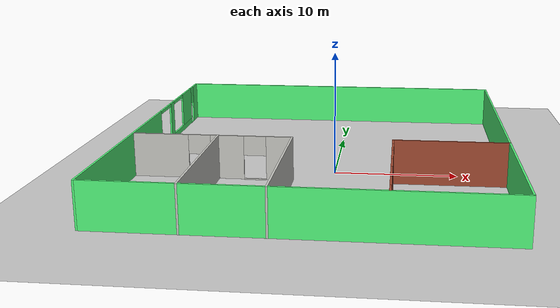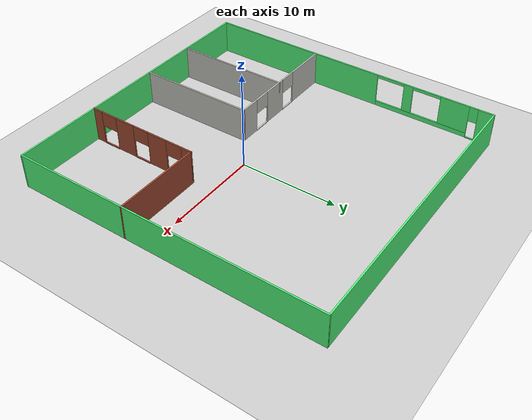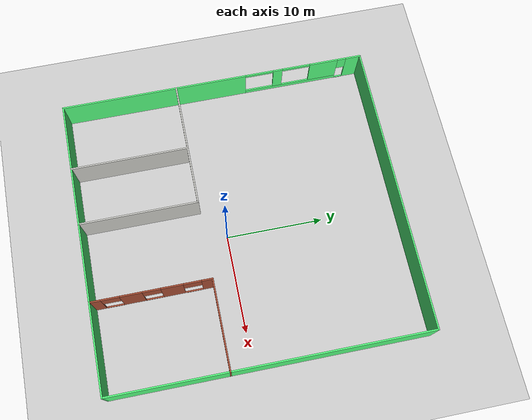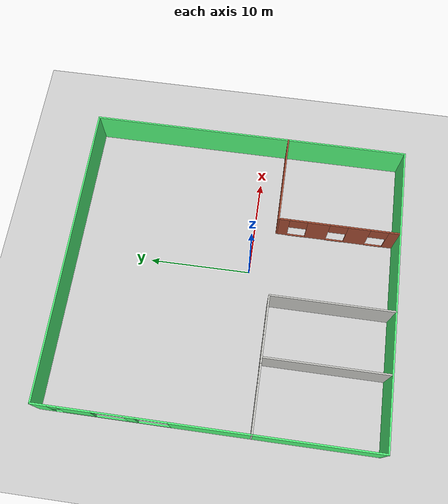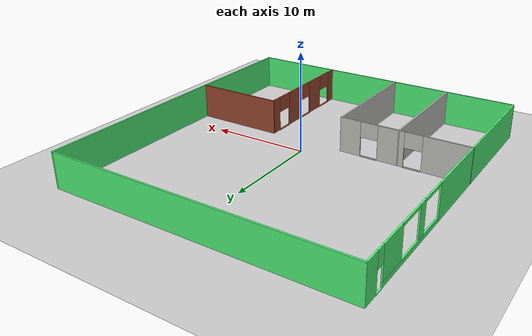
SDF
<sdf version="1.6">
 <world name="default">
  <model name="ground_plane">
   <static>1</static>
   <link name="link">
    <collision name="collision">
     <geometry><plane><normal>0 0 1</normal><size>100 100</size></plane></geometry>
     <surface><friction><ode><mu>100</mu><mu2>50</mu2></ode></friction></surface>
    </collision>
    <visual name="visual">
     <cast_shadows>0</cast_shadows>
     <geometry><plane><normal>0 0 1</normal><size>100 100</size></plane></geometry>
     <material>
      <script><uri>file://media/materials/scripts/gazebo.material</uri><name>Gazebo/Grey</name></script>
     </material>
    </visual>
   </link>
  </model>
  <model name="floorplan">
   <link name="Wall_0">
    <pose>0 16 0 0 -0 0</pose>
    <visual name="Wall_0_Visual">
     <pose>0 0 1.8 0 -0 0</pose>
     <geometry><box><size>30.15 0.15 3.6</size></box></geometry>
     <material>
      <script><uri>file://media/materials/scripts/gazebo.material</uri><name>Gazebo/Grey</name></script>
      <ambient>0.333333 1 0.498039 1</ambient>
      <shader type="pixel"/>
      <diffuse>0.7 0.7 0.7 1</diffuse>
      <specular>0.01 0.01 0.01 1</specular>
      <emissive>0 0 0 1</emissive>
     </material>
    </visual>
    <collision name="Wall_0_Collision">
     <pose>0 0 1.8 0 -0 0</pose>
     <geometry><box><size>30.15 0.15 3.6</size></box></geometry>
     <surface>
      <friction>
       <ode><mu>1</mu><mu2>1</mu2><fdir1>0 0 0</fdir1><slip1>0</slip1><slip2>0</slip2></ode>
       <torsional>
        <coefficient>1</coefficient>
        <patch_radius>0</patch_radius>
        <surface_radius>0</surface_radius>
        <use_patch_radius>1</use_patch_radius>
        <ode><slip>0</slip></ode>
       </torsional>
      </friction>
      <bounce><restitution_coefficient>0</restitution_coefficient><threshold>1e+06</threshold></bounce>
      <contact>
       <collide_without_contact>0</collide_without_contact>
       <collide_without_contact_bitmask>1</collide_without_contact_bitmask>
       <collide_bitmask>1</collide_bitmask>
       <ode>
        <soft_cfm>0</soft_cfm>
        <soft_erp>0.2</soft_erp>
        <kp>1e+13</kp>
        <kd>1</kd>
        <max_vel>0.01</max_vel>
        <min_depth>0</min_depth>
       </ode>
       <bullet>
        <split_impulse>1</split_impulse>
        <split_impulse_penetration_threshold>-0.01</split_impulse_penetration_threshold>
        <soft_cfm>0</soft_cfm>
        <soft_erp>0.2</soft_erp>
        <kp>1e+13</kp>
        <kd>1</kd>
       </bullet>
      </contact>
     </surface>
    </collision>
   </link>
   <link name="Wall_13">
    <pose>-8 -10 0 0 0 -1.5708</pose>
    <visual name="Wall_13_Visual">
     <pose>0 0 1.8 0 -0 0</pose>
     <geometry><box><size>12.15 0.15 3.6</size></box></geometry>
     <material>
      <script><uri>file://media/materials/scripts/gazebo.material</uri><name>Gazebo/CeilingTiled</name></script>
      <ambient>1 1 0.498039 1</ambient>
      <shader type="pixel"/>
      <diffuse>1 1 1 1</diffuse>
      <specular>0 0 0 1</specular>
      <emissive>0 0 0 1</emissive>
     </material>
    </visual>
    <collision name="Wall_13_Collision">
     <pose>0 0 1.8 0 -0 0</pose>
     <geometry><box><size>12.15 0.15 3.6</size></box></geometry>
     <surface>
      <friction>
       <ode><mu>1</mu><mu2>1</mu2><fdir1>0 0 0</fdir1><slip1>0</slip1><slip2>0</slip2></ode>
       <torsional>
        <coefficient>1</coefficient>
        <patch_radius>0</patch_radius>
        <surface_radius>0</surface_radius>
        <use_patch_radius>1</use_patch_radius>
        <ode><slip>0</slip></ode>
       </torsional>
      </friction>
      <bounce><restitution_coefficient>0</restitution_coefficient><threshold>1e+06</threshold></bounce>
      <contact>
       <collide_without_contact>0</collide_without_contact>
       <collide_without_contact_bitmask>1</collide_without_contact_bitmask>
       <collide_bitmask>1</collide_bitmask>
       <ode>
        <soft_cfm>0</soft_cfm>
        <soft_erp>0.2</soft_erp>
        <kp>1e+13</kp>
        <kd>1</kd>
        <max_vel>0.01</max_vel>
        <min_depth>0</min_depth>
       </ode>
       <bullet>
        <split_impulse>1</split_impulse>
        <split_impulse_penetration_threshold>-0.01</split_impulse_penetration_threshold>
        <soft_cfm>0</soft_cfm>
        <soft_erp>0.2</soft_erp>
        <kp>1e+13</kp>
        <kd>1</kd>
       </bullet>
      </contact>
     </surface>
    </collision>
   </link>
   <link name="Wall_15">
    <pose>-2 -10 0 0 0 -1.5708</pose>
    <visual name="Wall_15_Visual">
     <pose>0 0 1.8 0 -0 0</pose>
     <geometry><box><size>12.15 0.15 3.6</size></box></geometry>
     <material>
      <script><uri>file://media/materials/scripts/gazebo.material</uri><name>Gazebo/CeilingTiled</name></script>
      <ambient>1 1 0.498039 1</ambient>
      <shader type="pixel"/>
      <diffuse>1 1 1 1</diffuse>
      <specular>0 0 0 1</specular>
      <emissive>0 0 0 1</emissive>
     </material>
    </visual>
    <collision name="Wall_15_Collision">
     <pose>0 0 1.8 0 -0 0</pose>
     <geometry><box><size>12.15 0.15 3.6</size></box></geometry>
     <surface>
      <friction>
       <ode><mu>1</mu><mu2>1</mu2><fdir1>0 0 0</fdir1><slip1>0</slip1><slip2>0</slip2></ode>
       <torsional>
        <coefficient>1</coefficient>
        <patch_radius>0</patch_radius>
        <surface_radius>0</surface_radius>
        <use_patch_radius>1</use_patch_radius>
        <ode><slip>0</slip></ode>
       </torsional>
      </friction>
      <bounce><restitution_coefficient>0</restitution_coefficient><threshold>1e+06</threshold></bounce>
      <contact>
       <collide_without_contact>0</collide_without_contact>
       <collide_without_contact_bitmask>1</collide_without_contact_bitmask>
       <collide_bitmask>1</collide_bitmask>
       <ode>
        <soft_cfm>0</soft_cfm>
        <soft_erp>0.2</soft_erp>
        <kp>1e+13</kp>
        <kd>1</kd>
        <max_vel>0.01</max_vel>
        <min_depth>0</min_depth>
       </ode>
       <bullet>
        <split_impulse>1</split_impulse>
        <split_impulse_penetration_threshold>-0.01</split_impulse_penetration_threshold>
        <soft_cfm>0</soft_cfm>
        <soft_erp>0.2</soft_erp>
        <kp>1e+13</kp>
        <kd>1</kd>
       </bullet>
      </contact>
     </surface>
    </collision>
   </link>
   <link name="Wall_17">
    <pose>10.5 -4 0 0 -0 0</pose>
    <visual name="Wall_17_Visual">
     <pose>0 0 1.8 0 -0 0</pose>
     <geometry><box><size>9.15 0.15 3.6</size></box></geometry>
     <material>
      <script><uri>file://media/materials/scripts/gazebo.material</uri><name>Gazebo/Bricks</name></script>
      <ambient>0.333333 0.666667 1 1</ambient>
      <shader type="pixel"/>
      <diffuse>1 1 1 1</diffuse>
      <specular>0.2 0.2 0.2 1</specular>
      <emissive>0 0 0 1</emissive>
     </material>
    </visual>
    <collision name="Wall_17_Collision">
     <pose>0 0 1.8 0 -0 0</pose>
     <geometry><box><size>9.15 0.15 3.6</size></box></geometry>
     <surface>
      <friction>
       <ode><mu>1</mu><mu2>1</mu2><fdir1>0 0 0</fdir1><slip1>0</slip1><slip2>0</slip2></ode>
       <torsional>
        <coefficient>1</coefficient>
        <patch_radius>0</patch_radius>
        <surface_radius>0</surface_radius>
        <use_patch_radius>1</use_patch_radius>
        <ode><slip>0</slip></ode>
       </torsional>
      </friction>
      <bounce><restitution_coefficient>0</restitution_coefficient><threshold>1e+06</threshold></bounce>
      <contact>
       <collide_without_contact>0</collide_without_contact>
       <collide_without_contact_bitmask>1</collide_without_contact_bitmask>
       <collide_bitmask>1</collide_bitmask>
       <ode>
        <soft_cfm>0</soft_cfm>
        <soft_erp>0.2</soft_erp>
        <kp>1e+13</kp>
        <kd>1</kd>
        <max_vel>0.01</max_vel>
        <min_depth>0</min_depth>
       </ode>
       <bullet>
        <split_impulse>1</split_impulse>
        <split_impulse_penetration_threshold>-0.01</split_impulse_penetration_threshold>
        <soft_cfm>0</soft_cfm>
        <soft_erp>0.2</soft_erp>
        <kp>1e+13</kp>
        <kd>1</kd>
       </bullet>
      </contact>
     </surface>
    </collision>
   </link>
   <link name="Wall_44">
    <pose>-8.5 -4 0 0 -0 0</pose>
    <visual name="Wall_44_Visual_0">
     <pose>-4.2375 0 1.8 0 -0 0</pose>
     <geometry><box><size>4.675 0.15 3.6</size></box></geometry>
     <material>
      <script><uri>file://media/materials/scripts/gazebo.material</uri><name>Gazebo/CeilingTiled</name></script>
      <ambient>1 1 0.498039 1</ambient>
      <shader type="pixel"/>
      <diffuse>1 1 1 1</diffuse>
      <specular>0 0 0 1</specular>
      <emissive>0 0 0 1</emissive>
     </material>
    </visual>
    <visual name="Wall_44_Visual_1">
     <pose>1.25 0 1.8 0 -0 0</pose>
     <geometry><box><size>2.7 0.15 3.6</size></box></geometry>
     <material>
      <script><uri>file://media/materials/scripts/gazebo.material</uri><name>Gazebo/CeilingTiled</name></script>
      <ambient>1 1 0.498039 1</ambient>
      <shader type="pixel"/>
      <diffuse>1 1 1 1</diffuse>
      <specular>0 0 0 1</specular>
      <emissive>0 0 0 1</emissive>
     </material>
    </visual>
    <visual name="Wall_44_Visual_2">
     <pose>5.4875 0 1.8 0 -0 0</pose>
     <geometry><box><size>2.175 0.15 3.6</size></box></geometry>
     <material>
      <script><uri>file://media/materials/scripts/gazebo.material</uri><name>Gazebo/CeilingTiled</name></script>
      <ambient>1 1 0.498039 1</ambient>
      <shader type="pixel"/>
      <diffuse>1 1 1 1</diffuse>
      <specular>0 0 0 1</specular>
      <emissive>0 0 0 1</emissive>
     </material>
    </visual>
    <visual name="Wall_44_Visual_3">
     <pose>-1 0 0 0 -0 0</pose>
     <geometry><box><size>1.8 0.15 0.1</size></box></geometry>
     <material>
      <script><uri>file://media/materials/scripts/gazebo.material</uri><name>Gazebo/CeilingTiled</name></script>
      <ambient>1 1 0.498039 1</ambient>
      <shader type="pixel"/>
      <diffuse>1 1 1 1</diffuse>
      <specular>0 0 0 1</specular>
      <emissive>0 0 0 1</emissive>
     </material>
    </visual>
    <visual name="Wall_44_Visual_4">
     <pose>3.5 0 0 0 -0 0</pose>
     <geometry><box><size>1.8 0.15 0.1</size></box></geometry>
     <material>
      <script><uri>file://media/materials/scripts/gazebo.material</uri><name>Gazebo/CeilingTiled</name></script>
      <ambient>1 1 0.498039 1</ambient>
      <shader type="pixel"/>
      <diffuse>1 1 1 1</diffuse>
      <specular>0 0 0 1</specular>
      <emissive>0 0 0 1</emissive>
     </material>
    </visual>
    <visual name="Wall_44_Visual_5">
     <pose>-1 0 2.8 0 -0 0</pose>
     <geometry><box><size>1.8 0.15 1.6</size></box></geometry>
     <material>
      <script><uri>file://media/materials/scripts/gazebo.material</uri><name>Gazebo/CeilingTiled</name></script>
      <ambient>1 1 0.498039 1</ambient>
      <shader type="pixel"/>
      <diffuse>1 1 1 1</diffuse>
      <specular>0 0 0 1</specular>
      <emissive>0 0 0 1</emissive>
     </material>
    </visual>
    <visual name="Wall_44_Visual_6">
     <pose>3.5 0 2.8 0 -0 0</pose>
     <geometry><box><size>1.8 0.15 1.6</size></box></geometry>
     <material>
      <script><uri>file://media/materials/scripts/gazebo.material</uri><name>Gazebo/CeilingTiled</name></script>
      <ambient>1 1 0.498039 1</ambient>
      <shader type="pixel"/>
      <diffuse>1 1 1 1</diffuse>
      <specular>0 0 0 1</specular>
      <emissive>0 0 0 1</emissive>
     </material>
    </visual>
    <collision name="Wall_44_Collision_0">
     <pose>-4.2375 0 1.8 0 -0 0</pose>
     <geometry><box><size>4.675 0.15 3.6</size></box></geometry>
     <surface>
      <friction>
       <ode><mu>1</mu><mu2>1</mu2><fdir1>0 0 0</fdir1><slip1>0</slip1><slip2>0</slip2></ode>
       <torsional>
        <coefficient>1</coefficient>
        <patch_radius>0</patch_radius>
        <surface_radius>0</surface_radius>
        <use_patch_radius>1</use_patch_radius>
        <ode><slip>0</slip></ode>
       </torsional>
      </friction>
      <bounce><restitution_coefficient>0</restitution_coefficient><threshold>1e+06</threshold></bounce>
      <contact>
       <collide_without_contact>0</collide_without_contact>
       <collide_without_contact_bitmask>1</collide_without_contact_bitmask>
       <collide_bitmask>1</collide_bitmask>
       <ode>
        <soft_cfm>0</soft_cfm>
        <soft_erp>0.2</soft_erp>
        <kp>1e+13</kp>
        <kd>1</kd>
        <max_vel>0.01</max_vel>
        <min_depth>0</min_depth>
       </ode>
       <bullet>
        <split_impulse>1</split_impulse>
        <split_impulse_penetration_threshold>-0.01</split_impulse_penetration_threshold>
        <soft_cfm>0</soft_cfm>
        <soft_erp>0.2</soft_erp>
        <kp>1e+13</kp>
        <kd>1</kd>
       </bullet>
      </contact>
     </surface>
    </collision>
    <collision name="Wall_44_Collision_1">
     <pose>1.25 0 1.8 0 -0 0</pose>
     <geometry><box><size>2.7 0.15 3.6</size></box></geometry>
     <surface>
      <friction>
       <ode><mu>1</mu><mu2>1</mu2><fdir1>0 0 0</fdir1><slip1>0</slip1><slip2>0</slip2></ode>
       <torsional>
        <coefficient>1</coefficient>
        <patch_radius>0</patch_radius>
        <surface_radius>0</surface_radius>
        <use_patch_radius>1</use_patch_radius>
        <ode><slip>0</slip></ode>
       </torsional>
      </friction>
      <bounce><restitution_coefficient>0</restitution_coefficient><threshold>1e+06</threshold></bounce>
      <contact>
       <collide_without_contact>0</collide_without_contact>
       <collide_without_contact_bitmask>1</collide_without_contact_bitmask>
       <collide_bitmask>1</collide_bitmask>
       <ode>
        <soft_cfm>0</soft_cfm>
        <soft_erp>0.2</soft_erp>
        <kp>1e+13</kp>
        <kd>1</kd>
        <max_vel>0.01</max_vel>
        <min_depth>0</min_depth>
       </ode>
       <bullet>
        <split_impulse>1</split_impulse>
        <split_impulse_penetration_threshold>-0.01</split_impulse_penetration_threshold>
        <soft_cfm>0</soft_cfm>
        <soft_erp>0.2</soft_erp>
        <kp>1e+13</kp>
        <kd>1</kd>
       </bullet>
      </contact>
     </surface>
    </collision>
    <collision name="Wall_44_Collision_3">
     <pose>-1 0 0 0 -0 0</pose>
     <geometry><box><size>1.8 0.15 0.1</size></box></geometry>
     <surface>
      <friction>
       <ode><mu>1</mu><mu2>1</mu2><fdir1>0 0 0</fdir1><slip1>0</slip1><slip2>0</slip2></ode>
       <torsional>
        <coefficient>1</coefficient>
        <patch_radius>0</patch_radius>
        <surface_radius>0</surface_radius>
        <use_patch_radius>1</use_patch_radius>
        <ode><slip>0</slip></ode>
       </torsional>
      </friction>
      <bounce><restitution_coefficient>0</restitution_coefficient><threshold>1e+06</threshold></bounce>
      <contact>
       <collide_without_contact>0</collide_without_contact>
       <collide_without_contact_bitmask>1</collide_without_contact_bitmask>
       <collide_bitmask>1</collide_bitmask>
       <ode>
        <soft_cfm>0</soft_cfm>
        <soft_erp>0.2</soft_erp>
        <kp>1e+13</kp>
        <kd>1</kd>
        <max_vel>0.01</max_vel>
        <min_depth>0</min_depth>
       </ode>
       <bullet>
        <split_impulse>1</split_impulse>
        <split_impulse_penetration_threshold>-0.01</split_impulse_penetration_threshold>
        <soft_cfm>0</soft_cfm>
        <soft_erp>0.2</soft_erp>
        <kp>1e+13</kp>
        <kd>1</kd>
       </bullet>
      </contact>
     </surface>
    </collision>
    <collision name="Wall_44_Collision_2">
     <pose>5.4875 0 1.8 0 -0 0</pose>
     <geometry><box><size>2.175 0.15 3.6</size></box></geometry>
     <surface>
      <friction>
       <ode><mu>1</mu><mu2>1</mu2><fdir1>0 0 0</fdir1><slip1>0</slip1><slip2>0</slip2></ode>
       <torsional>
        <coefficient>1</coefficient>
        <patch_radius>0</patch_radius>
        <surface_radius>0</surface_radius>
        <use_patch_radius>1</use_patch_radius>
        <ode><slip>0</slip></ode>
       </torsional>
      </friction>
      <bounce><restitution_coefficient>0</restitution_coefficient><threshold>1e+06</threshold></bounce>
      <contact>
       <collide_without_contact>0</collide_without_contact>
       <collide_without_contact_bitmask>1</collide_without_contact_bitmask>
       <collide_bitmask>1</collide_bitmask>
       <ode>
        <soft_cfm>0</soft_cfm>
        <soft_erp>0.2</soft_erp>
        <kp>1e+13</kp>
        <kd>1</kd>
        <max_vel>0.01</max_vel>
        <min_depth>0</min_depth>
       </ode>
       <bullet>
        <split_impulse>1</split_impulse>
        <split_impulse_penetration_threshold>-0.01</split_impulse_penetration_threshold>
        <soft_cfm>0</soft_cfm>
        <soft_erp>0.2</soft_erp>
        <kp>1e+13</kp>
        <kd>1</kd>
       </bullet>
      </contact>
     </surface>
    </collision>
    <collision name="Wall_44_Collision_6">
     <pose>3.5 0 2.8 0 -0 0</pose>
     <geometry><box><size>1.8 0.15 1.6</size></box></geometry>
     <surface>
      <friction>
       <ode><mu>1</mu><mu2>1</mu2><fdir1>0 0 0</fdir1><slip1>0</slip1><slip2>0</slip2></ode>
       <torsional>
        <coefficient>1</coefficient>
        <patch_radius>0</patch_radius>
        <surface_radius>0</surface_radius>
        <use_patch_radius>1</use_patch_radius>
        <ode><slip>0</slip></ode>
       </torsional>
      </friction>
      <bounce><restitution_coefficient>0</restitution_coefficient><threshold>1e+06</threshold></bounce>
      <contact>
       <collide_without_contact>0</collide_without_contact>
       <collide_without_contact_bitmask>1</collide_without_contact_bitmask>
       <collide_bitmask>1</collide_bitmask>
       <ode>
        <soft_cfm>0</soft_cfm>
        <soft_erp>0.2</soft_erp>
        <kp>1e+13</kp>
        <kd>1</kd>
        <max_vel>0.01</max_vel>
        <min_depth>0</min_depth>
       </ode>
       <bullet>
        <split_impulse>1</split_impulse>
        <split_impulse_penetration_threshold>-0.01</split_impulse_penetration_threshold>
        <soft_cfm>0</soft_cfm>
        <soft_erp>0.2</soft_erp>
        <kp>1e+13</kp>
        <kd>1</kd>
       </bullet>
      </contact>
     </surface>
    </collision>
    <collision name="Wall_44_Collision_4">
     <pose>3.5 0 0 0 -0 0</pose>
     <geometry><box><size>1.8 0.15 0.1</size></box></geometry>
     <surface>
      <friction>
       <ode><mu>1</mu><mu2>1</mu2><fdir1>0 0 0</fdir1><slip1>0</slip1><slip2>0</slip2></ode>
       <torsional>
        <coefficient>1</coefficient>
        <patch_radius>0</patch_radius>
        <surface_radius>0</surface_radius>
        <use_patch_radius>1</use_patch_radius>
        <ode><slip>0</slip></ode>
       </torsional>
      </friction>
      <bounce><restitution_coefficient>0</restitution_coefficient><threshold>1e+06</threshold></bounce>
      <contact>
       <collide_without_contact>0</collide_without_contact>
       <collide_without_contact_bitmask>1</collide_without_contact_bitmask>
       <collide_bitmask>1</collide_bitmask>
       <ode>
        <soft_cfm>0</soft_cfm>
        <soft_erp>0.2</soft_erp>
        <kp>1e+13</kp>
        <kd>1</kd>
        <max_vel>0.01</max_vel>
        <min_depth>0</min_depth>
       </ode>
       <bullet>
        <split_impulse>1</split_impulse>
        <split_impulse_penetration_threshold>-0.01</split_impulse_penetration_threshold>
        <soft_cfm>0</soft_cfm>
        <soft_erp>0.2</soft_erp>
        <kp>1e+13</kp>
        <kd>1</kd>
       </bullet>
      </contact>
     </surface>
    </collision>
    <collision name="Wall_44_Collision_5">
     <pose>-1 0 2.8 0 -0 0</pose>
     <geometry><box><size>1.8 0.15 1.6</size></box></geometry>
     <surface>
      <friction>
       <ode><mu>1</mu><mu2>1</mu2><fdir1>0 0 0</fdir1><slip1>0</slip1><slip2>0</slip2></ode>
       <torsional>
        <coefficient>1</coefficient>
        <patch_radius>0</patch_radius>
        <surface_radius>0</surface_radius>
        <use_patch_radius>1</use_patch_radius>
        <ode><slip>0</slip></ode>
       </torsional>
      </friction>
      <bounce><restitution_coefficient>0</restitution_coefficient><threshold>1e+06</threshold></bounce>
      <contact>
       <collide_without_contact>0</collide_without_contact>
       <collide_without_contact_bitmask>1</collide_without_contact_bitmask>
       <collide_bitmask>1</collide_bitmask>
       <ode>
        <soft_cfm>0</soft_cfm>
        <soft_erp>0.2</soft_erp>
        <kp>1e+13</kp>
        <kd>1</kd>
        <max_vel>0.01</max_vel>
        <min_depth>0</min_depth>
       </ode>
       <bullet>
        <split_impulse>1</split_impulse>
        <split_impulse_penetration_threshold>-0.01</split_impulse_penetration_threshold>
        <soft_cfm>0</soft_cfm>
        <soft_erp>0.2</soft_erp>
        <kp>1e+13</kp>
        <kd>1</kd>
       </bullet>
      </contact>
     </surface>
    </collision>
   </link>
   <link name="Wall_46">
    <pose>6 -10 0 0 0 -1.5708</pose>
    <visual name="Wall_46_Visual_0">
     <pose>-5.4875 0 1.8 0 -0 0</pose>
     <geometry><box><size>1.175 0.15 3.6</size></box></geometry>
     <material>
      <script><uri>file://media/materials/scripts/gazebo.material</uri><name>Gazebo/Bricks</name></script>
      <ambient>0.333333 0.666667 1 1</ambient>
      <shader type="pixel"/>
      <diffuse>1 1 1 1</diffuse>
      <specular>0.2 0.2 0.2 1</specular>
      <emissive>0 0 0 1</emissive>
     </material>
    </visual>
    <visual name="Wall_46_Visual_1">
     <pose>-2 0 1.8 0 -0 0</pose>
     <geometry><box><size>2.2 0.15 3.6</size></box></geometry>
     <material>
      <script><uri>file://media/materials/scripts/gazebo.material</uri><name>Gazebo/Bricks</name></script>
      <ambient>0.333333 0.666667 1 1</ambient>
      <shader type="pixel"/>
      <diffuse>1 1 1 1</diffuse>
      <specular>0.2 0.2 0.2 1</specular>
      <emissive>0 0 0 1</emissive>
     </material>
    </visual>
    <visual name="Wall_46_Visual_2">
     <pose>2 0 1.8 0 -0 0</pose>
     <geometry><box><size>2.2 0.15 3.6</size></box></geometry>
     <material>
      <script><uri>file://media/materials/scripts/gazebo.material</uri><name>Gazebo/Bricks</name></script>
      <ambient>0.333333 0.666667 1 1</ambient>
      <shader type="pixel"/>
      <diffuse>1 1 1 1</diffuse>
      <specular>0.2 0.2 0.2 1</specular>
      <emissive>0 0 0 1</emissive>
     </material>
    </visual>
    <visual name="Wall_46_Visual_3">
     <pose>5.4875 0 1.8 0 -0 0</pose>
     <geometry><box><size>1.175 0.15 3.6</size></box></geometry>
     <material>
      <script><uri>file://media/materials/scripts/gazebo.material</uri><name>Gazebo/Bricks</name></script>
      <ambient>0.333333 0.666667 1 1</ambient>
      <shader type="pixel"/>
      <diffuse>1 1 1 1</diffuse>
      <specular>0.2 0.2 0.2 1</specular>
      <emissive>0 0 0 1</emissive>
     </material>
    </visual>
    <visual name="Wall_46_Visual_4">
     <pose>-4 0 0 0 -0 0</pose>
     <geometry><box><size>1.8 0.15 0.1</size></box></geometry>
     <material>
      <script><uri>file://media/materials/scripts/gazebo.material</uri><name>Gazebo/Bricks</name></script>
      <ambient>0.333333 0.666667 1 1</ambient>
      <shader type="pixel"/>
      <diffuse>1 1 1 1</diffuse>
      <specular>0.2 0.2 0.2 1</specular>
      <emissive>0 0 0 1</emissive>
     </material>
    </visual>
    <visual name="Wall_46_Visual_5">
     <geometry><box><size>1.8 0.15 0.1</size></box></geometry>
     <material>
      <script><uri>file://media/materials/scripts/gazebo.material</uri><name>Gazebo/Bricks</name></script>
      <ambient>0.333333 0.666667 1 1</ambient>
      <shader type="pixel"/>
      <diffuse>1 1 1 1</diffuse>
      <specular>0.2 0.2 0.2 1</specular>
      <emissive>0 0 0 1</emissive>
     </material>
    </visual>
    <visual name="Wall_46_Visual_6">
     <pose>4 0 0 0 -0 0</pose>
     <geometry><box><size>1.8 0.15 0.1</size></box></geometry>
     <material>
      <script><uri>file://media/materials/scripts/gazebo.material</uri><name>Gazebo/Bricks</name></script>
      <ambient>0.333333 0.666667 1 1</ambient>
      <shader type="pixel"/>
      <diffuse>1 1 1 1</diffuse>
      <specular>0.2 0.2 0.2 1</specular>
      <emissive>0 0 0 1</emissive>
     </material>
    </visual>
    <visual name="Wall_46_Visual_7">
     <pose>-4 0 2.8 0 -0 0</pose>
     <geometry><box><size>1.8 0.15 1.6</size></box></geometry>
     <material>
      <script><uri>file://media/materials/scripts/gazebo.material</uri><name>Gazebo/Bricks</name></script>
      <ambient>0.333333 0.666667 1 1</ambient>
      <shader type="pixel"/>
      <diffuse>1 1 1 1</diffuse>
      <specular>0.2 0.2 0.2 1</specular>
      <emissive>0 0 0 1</emissive>
     </material>
    </visual>
    <visual name="Wall_46_Visual_8">
     <pose>0 0 2.8 0 -0 0</pose>
     <geometry><box><size>1.8 0.15 1.6</size></box></geometry>
     <material>
      <script><uri>file://media/materials/scripts/gazebo.material</uri><name>Gazebo/Bricks</name></script>
      <ambient>0.333333 0.666667 1 1</ambient>
      <shader type="pixel"/>
      <diffuse>1 1 1 1</diffuse>
      <specular>0.2 0.2 0.2 1</specular>
      <emissive>0 0 0 1</emissive>
     </material>
    </visual>
    <visual name="Wall_46_Visual_9">
     <pose>4 0 2.8 0 -0 0</pose>
     <geometry><box><size>1.8 0.15 1.6</size></box></geometry>
     <material>
      <script><uri>file://media/materials/scripts/gazebo.material</uri><name>Gazebo/Bricks</name></script>
      <ambient>0.333333 0.666667 1 1</ambient>
      <shader type="pixel"/>
      <diffuse>1 1 1 1</diffuse>
      <specular>0.2 0.2 0.2 1</specular>
      <emissive>0 0 0 1</emissive>
     </material>
    </visual>
    <collision name="Wall_46_Collision_0">
     <pose>-5.4875 0 1.8 0 -0 0</pose>
     <geometry><box><size>1.175 0.15 3.6</size></box></geometry>
     <surface>
      <friction>
       <ode><mu>1</mu><mu2>1</mu2><fdir1>0 0 0</fdir1><slip1>0</slip1><slip2>0</slip2></ode>
       <torsional>
        <coefficient>1</coefficient>
        <patch_radius>0</patch_radius>
        <surface_radius>0</surface_radius>
        <use_patch_radius>1</use_patch_radius>
        <ode><slip>0</slip></ode>
       </torsional>
      </friction>
      <bounce><restitution_coefficient>0</restitution_coefficient><threshold>1e+06</threshold></bounce>
      <contact>
       <collide_without_contact>0</collide_without_contact>
       <collide_without_contact_bitmask>1</collide_without_contact_bitmask>
       <collide_bitmask>1</collide_bitmask>
       <ode>
        <soft_cfm>0</soft_cfm>
        <soft_erp>0.2</soft_erp>
        <kp>1e+13</kp>
        <kd>1</kd>
        <max_vel>0.01</max_vel>
        <min_depth>0</min_depth>
       </ode>
       <bullet>
        <split_impulse>1</split_impulse>
        <split_impulse_penetration_threshold>-0.01</split_impulse_penetration_threshold>
        <soft_cfm>0</soft_cfm>
        <soft_erp>0.2</soft_erp>
        <kp>1e+13</kp>
        <kd>1</kd>
       </bullet>
      </contact>
     </surface>
    </collision>
    <collision name="Wall_46_Collision_1">
     <pose>-2 0 1.8 0 -0 0</pose>
     <geometry><box><size>2.2 0.15 3.6</size></box></geometry>
     <surface>
      <friction>
       <ode><mu>1</mu><mu2>1</mu2><fdir1>0 0 0</fdir1><slip1>0</slip1><slip2>0</slip2></ode>
       <torsional>
        <coefficient>1</coefficient>
        <patch_radius>0</patch_radius>
        <surface_radius>0</surface_radius>
        <use_patch_radius>1</use_patch_radius>
        <ode><slip>0</slip></ode>
       </torsional>
      </friction>
      <bounce><restitution_coefficient>0</restitution_coefficient><threshold>1e+06</threshold></bounce>
      <contact>
       <collide_without_contact>0</collide_without_contact>
       <collide_without_contact_bitmask>1</collide_without_contact_bitmask>
       <collide_bitmask>1</collide_bitmask>
       <ode>
        <soft_cfm>0</soft_cfm>
        <soft_erp>0.2</soft_erp>
        <kp>1e+13</kp>
        <kd>1</kd>
        <max_vel>0.01</max_vel>
        <min_depth>0</min_depth>
       </ode>
       <bullet>
        <split_impulse>1</split_impulse>
        <split_impulse_penetration_threshold>-0.01</split_impulse_penetration_threshold>
        <soft_cfm>0</soft_cfm>
        <soft_erp>0.2</soft_erp>
        <kp>1e+13</kp>
        <kd>1</kd>
       </bullet>
      </contact>
     </surface>
    </collision>
    <collision name="Wall_46_Collision_2">
     <pose>2 0 1.8 0 -0 0</pose>
     <geometry><box><size>2.2 0.15 3.6</size></box></geometry>
     <surface>
      <friction>
       <ode><mu>1</mu><mu2>1</mu2><fdir1>0 0 0</fdir1><slip1>0</slip1><slip2>0</slip2></ode>
       <torsional>
        <coefficient>1</coefficient>
        <patch_radius>0</patch_radius>
        <surface_radius>0</surface_radius>
        <use_patch_radius>1</use_patch_radius>
        <ode><slip>0</slip></ode>
       </torsional>
      </friction>
      <bounce><restitution_coefficient>0</restitution_coefficient><threshold>1e+06</threshold></bounce>
      <contact>
       <collide_without_contact>0</collide_without_contact>
       <collide_without_contact_bitmask>1</collide_without_contact_bitmask>
       <collide_bitmask>1</collide_bitmask>
       <ode>
        <soft_cfm>0</soft_cfm>
        <soft_erp>0.2</soft_erp>
        <kp>1e+13</kp>
        <kd>1</kd>
        <max_vel>0.01</max_vel>
        <min_depth>0</min_depth>
       </ode>
       <bullet>
        <split_impulse>1</split_impulse>
        <split_impulse_penetration_threshold>-0.01</split_impulse_penetration_threshold>
        <soft_cfm>0</soft_cfm>
        <soft_erp>0.2</soft_erp>
        <kp>1e+13</kp>
        <kd>1</kd>
       </bullet>
      </contact>
     </surface>
    </collision>
    <collision name="Wall_46_Collision_5">
     <geometry><box><size>1.8 0.15 0.1</size></box></geometry>
     <surface>
      <friction>
       <ode><mu>1</mu><mu2>1</mu2><fdir1>0 0 0</fdir1><slip1>0</slip1><slip2>0</slip2></ode>
       <torsional>
        <coefficient>1</coefficient>
        <patch_radius>0</patch_radius>
        <surface_radius>0</surface_radius>
        <use_patch_radius>1</use_patch_radius>
        <ode><slip>0</slip></ode>
       </torsional>
      </friction>
      <bounce><restitution_coefficient>0</restitution_coefficient><threshold>1e+06</threshold></bounce>
      <contact>
       <collide_without_contact>0</collide_without_contact>
       <collide_without_contact_bitmask>1</collide_without_contact_bitmask>
       <collide_bitmask>1</collide_bitmask>
       <ode>
        <soft_cfm>0</soft_cfm>
        <soft_erp>0.2</soft_erp>
        <kp>1e+13</kp>
        <kd>1</kd>
        <max_vel>0.01</max_vel>
        <min_depth>0</min_depth>
       </ode>
       <bullet>
        <split_impulse>1</split_impulse>
        <split_impulse_penetration_threshold>-0.01</split_impulse_penetration_threshold>
        <soft_cfm>0</soft_cfm>
        <soft_erp>0.2</soft_erp>
        <kp>1e+13</kp>
        <kd>1</kd>
       </bullet>
      </contact>
     </surface>
    </collision>
    <collision name="Wall_46_Collision_4">
     <pose>-4 0 0 0 -0 0</pose>
     <geometry><box><size>1.8 0.15 0.1</size></box></geometry>
     <surface>
      <friction>
       <ode><mu>1</mu><mu2>1</mu2><fdir1>0 0 0</fdir1><slip1>0</slip1><slip2>0</slip2></ode>
       <torsional>
        <coefficient>1</coefficient>
        <patch_radius>0</patch_radius>
        <surface_radius>0</surface_radius>
        <use_patch_radius>1</use_patch_radius>
        <ode><slip>0</slip></ode>
       </torsional>
      </friction>
      <bounce><restitution_coefficient>0</restitution_coefficient><threshold>1e+06</threshold></bounce>
      <contact>
       <collide_without_contact>0</collide_without_contact>
       <collide_without_contact_bitmask>1</collide_without_contact_bitmask>
       <collide_bitmask>1</collide_bitmask>
       <ode>
        <soft_cfm>0</soft_cfm>
        <soft_erp>0.2</soft_erp>
        <kp>1e+13</kp>
        <kd>1</kd>
        <max_vel>0.01</max_vel>
        <min_depth>0</min_depth>
       </ode>
       <bullet>
        <split_impulse>1</split_impulse>
        <split_impulse_penetration_threshold>-0.01</split_impulse_penetration_threshold>
        <soft_cfm>0</soft_cfm>
        <soft_erp>0.2</soft_erp>
        <kp>1e+13</kp>
        <kd>1</kd>
       </bullet>
      </contact>
     </surface>
    </collision>
    <collision name="Wall_46_Collision_3">
     <pose>5.4875 0 1.8 0 -0 0</pose>
     <geometry><box><size>1.175 0.15 3.6</size></box></geometry>
     <surface>
      <friction>
       <ode><mu>1</mu><mu2>1</mu2><fdir1>0 0 0</fdir1><slip1>0</slip1><slip2>0</slip2></ode>
       <torsional>
        <coefficient>1</coefficient>
        <patch_radius>0</patch_radius>
        <surface_radius>0</surface_radius>
        <use_patch_radius>1</use_patch_radius>
        <ode><slip>0</slip></ode>
       </torsional>
      </friction>
      <bounce><restitution_coefficient>0</restitution_coefficient><threshold>1e+06</threshold></bounce>
      <contact>
       <collide_without_contact>0</collide_without_contact>
       <collide_without_contact_bitmask>1</collide_without_contact_bitmask>
       <collide_bitmask>1</collide_bitmask>
       <ode>
        <soft_cfm>0</soft_cfm>
        <soft_erp>0.2</soft_erp>
        <kp>1e+13</kp>
        <kd>1</kd>
        <max_vel>0.01</max_vel>
        <min_depth>0</min_depth>
       </ode>
       <bullet>
        <split_impulse>1</split_impulse>
        <split_impulse_penetration_threshold>-0.01</split_impulse_penetration_threshold>
        <soft_cfm>0</soft_cfm>
        <soft_erp>0.2</soft_erp>
        <kp>1e+13</kp>
        <kd>1</kd>
       </bullet>
      </contact>
     </surface>
    </collision>
    <collision name="Wall_46_Collision_7">
     <pose>-4 0 2.8 0 -0 0</pose>
     <geometry><box><size>1.8 0.15 1.6</size></box></geometry>
     <surface>
      <friction>
       <ode><mu>1</mu><mu2>1</mu2><fdir1>0 0 0</fdir1><slip1>0</slip1><slip2>0</slip2></ode>
       <torsional>
        <coefficient>1</coefficient>
        <patch_radius>0</patch_radius>
        <surface_radius>0</surface_radius>
        <use_patch_radius>1</use_patch_radius>
        <ode><slip>0</slip></ode>
       </torsional>
      </friction>
      <bounce><restitution_coefficient>0</restitution_coefficient><threshold>1e+06</threshold></bounce>
      <contact>
       <collide_without_contact>0</collide_without_contact>
       <collide_without_contact_bitmask>1</collide_without_contact_bitmask>
       <collide_bitmask>1</collide_bitmask>
       <ode>
        <soft_cfm>0</soft_cfm>
        <soft_erp>0.2</soft_erp>
        <kp>1e+13</kp>
        <kd>1</kd>
        <max_vel>0.01</max_vel>
        <min_depth>0</min_depth>
       </ode>
       <bullet>
        <split_impulse>1</split_impulse>
        <split_impulse_penetration_threshold>-0.01</split_impulse_penetration_threshold>
        <soft_cfm>0</soft_cfm>
        <soft_erp>0.2</soft_erp>
        <kp>1e+13</kp>
        <kd>1</kd>
       </bullet>
      </contact>
     </surface>
    </collision>
    <collision name="Wall_46_Collision_6">
     <pose>4 0 0 0 -0 0</pose>
     <geometry><box><size>1.8 0.15 0.1</size></box></geometry>
     <surface>
      <friction>
       <ode><mu>1</mu><mu2>1</mu2><fdir1>0 0 0</fdir1><slip1>0</slip1><slip2>0</slip2></ode>
       <torsional>
        <coefficient>1</coefficient>
        <patch_radius>0</patch_radius>
        <surface_radius>0</surface_radius>
        <use_patch_radius>1</use_patch_radius>
        <ode><slip>0</slip></ode>
       </torsional>
      </friction>
      <bounce><restitution_coefficient>0</restitution_coefficient><threshold>1e+06</threshold></bounce>
      <contact>
       <collide_without_contact>0</collide_without_contact>
       <collide_without_contact_bitmask>1</collide_without_contact_bitmask>
       <collide_bitmask>1</collide_bitmask>
       <ode>
        <soft_cfm>0</soft_cfm>
        <soft_erp>0.2</soft_erp>
        <kp>1e+13</kp>
        <kd>1</kd>
        <max_vel>0.01</max_vel>
        <min_depth>0</min_depth>
       </ode>
       <bullet>
        <split_impulse>1</split_impulse>
        <split_impulse_penetration_threshold>-0.01</split_impulse_penetration_threshold>
        <soft_cfm>0</soft_cfm>
        <soft_erp>0.2</soft_erp>
        <kp>1e+13</kp>
        <kd>1</kd>
       </bullet>
      </contact>
     </surface>
    </collision>
    <collision name="Wall_46_Collision_8">
     <pose>0 0 2.8 0 -0 0</pose>
     <geometry><box><size>1.8 0.15 1.6</size></box></geometry>
     <surface>
      <friction>
       <ode><mu>1</mu><mu2>1</mu2><fdir1>0 0 0</fdir1><slip1>0</slip1><slip2>0</slip2></ode>
       <torsional>
        <coefficient>1</coefficient>
        <patch_radius>0</patch_radius>
        <surface_radius>0</surface_radius>
        <use_patch_radius>1</use_patch_radius>
        <ode><slip>0</slip></ode>
       </torsional>
      </friction>
      <bounce><restitution_coefficient>0</restitution_coefficient><threshold>1e+06</threshold></bounce>
      <contact>
       <collide_without_contact>0</collide_without_contact>
       <collide_without_contact_bitmask>1</collide_without_contact_bitmask>
       <collide_bitmask>1</collide_bitmask>
       <ode>
        <soft_cfm>0</soft_cfm>
        <soft_erp>0.2</soft_erp>
        <kp>1e+13</kp>
        <kd>1</kd>
        <max_vel>0.01</max_vel>
        <min_depth>0</min_depth>
       </ode>
       <bullet>
        <split_impulse>1</split_impulse>
        <split_impulse_penetration_threshold>-0.01</split_impulse_penetration_threshold>
        <soft_cfm>0</soft_cfm>
        <soft_erp>0.2</soft_erp>
        <kp>1e+13</kp>
        <kd>1</kd>
       </bullet>
      </contact>
     </surface>
    </collision>
    <collision name="Wall_46_Collision_9">
     <pose>4 0 2.8 0 -0 0</pose>
     <geometry><box><size>1.8 0.15 1.6</size></box></geometry>
     <surface>
      <friction>
       <ode><mu>1</mu><mu2>1</mu2><fdir1>0 0 0</fdir1><slip1>0</slip1><slip2>0</slip2></ode>
       <torsional>
        <coefficient>1</coefficient>
        <patch_radius>0</patch_radius>
        <surface_radius>0</surface_radius>
        <use_patch_radius>1</use_patch_radius>
        <ode><slip>0</slip></ode>
       </torsional>
      </friction>
      <bounce><restitution_coefficient>0</restitution_coefficient><threshold>1e+06</threshold></bounce>
      <contact>
       <collide_without_contact>0</collide_without_contact>
       <collide_without_contact_bitmask>1</collide_without_contact_bitmask>
       <collide_bitmask>1</collide_bitmask>
       <ode>
        <soft_cfm>0</soft_cfm>
        <soft_erp>0.2</soft_erp>
        <kp>1e+13</kp>
        <kd>1</kd>
        <max_vel>0.01</max_vel>
        <min_depth>0</min_depth>
       </ode>
       <bullet>
        <split_impulse>1</split_impulse>
        <split_impulse_penetration_threshold>-0.01</split_impulse_penetration_threshold>
        <soft_cfm>0</soft_cfm>
        <soft_erp>0.2</soft_erp>
        <kp>1e+13</kp>
        <kd>1</kd>
       </bullet>
      </contact>
     </surface>
    </collision>
   </link>
   <link name="Wall_5">
    <pose>15 1e-06 0 0 0 -1.5708</pose>
    <visual name="Wall_5_Visual">
     <pose>0 0 1.8 0 -0 0</pose>
     <geometry><box><size>32.15 0.15 3.6</size></box></geometry>
     <material>
      <script><uri>file://media/materials/scripts/gazebo.material</uri><name>Gazebo/Grey</name></script>
      <ambient>0.333333 1 0.498039 1</ambient>
      <shader type="pixel"/>
      <diffuse>0.7 0.7 0.7 1</diffuse>
      <specular>0.01 0.01 0.01 1</specular>
      <emissive>0 0 0 1</emissive>
     </material>
    </visual>
    <collision name="Wall_5_Collision">
     <pose>0 0 1.8 0 -0 0</pose>
     <geometry><box><size>32.15 0.15 3.6</size></box></geometry>
     <surface>
      <friction>
       <ode><mu>1</mu><mu2>1</mu2><fdir1>0 0 0</fdir1><slip1>0</slip1><slip2>0</slip2></ode>
       <torsional>
        <coefficient>1</coefficient>
        <patch_radius>0</patch_radius>
        <surface_radius>0</surface_radius>
        <use_patch_radius>1</use_patch_radius>
        <ode><slip>0</slip></ode>
       </torsional>
      </friction>
      <bounce><restitution_coefficient>0</restitution_coefficient><threshold>1e+06</threshold></bounce>
      <contact>
       <collide_without_contact>0</collide_without_contact>
       <collide_without_contact_bitmask>1</collide_without_contact_bitmask>
       <collide_bitmask>1</collide_bitmask>
       <ode>
        <soft_cfm>0</soft_cfm>
        <soft_erp>0.2</soft_erp>
        <kp>1e+13</kp>
        <kd>1</kd>
        <max_vel>0.01</max_vel>
        <min_depth>0</min_depth>
       </ode>
       <bullet>
        <split_impulse>1</split_impulse>
        <split_impulse_penetration_threshold>-0.01</split_impulse_penetration_threshold>
        <soft_cfm>0</soft_cfm>
        <soft_erp>0.2</soft_erp>
        <kp>1e+13</kp>
        <kd>1</kd>
       </bullet>
      </contact>
     </surface>
    </collision>
   </link>
   <link name="Wall_6">
    <pose>0 -16 0 0 -0 3.14159</pose>
    <visual name="Wall_6_Visual">
     <pose>0 0 1.8 0 -0 0</pose>
     <geometry><box><size>30.15 0.15 3.6</size></box></geometry>
     <material>
      <script><uri>file://media/materials/scripts/gazebo.material</uri><name>Gazebo/Grey</name></script>
      <ambient>0.333333 1 0.498039 1</ambient>
      <shader type="pixel"/>
      <diffuse>0.7 0.7 0.7 1</diffuse>
      <specular>0.01 0.01 0.01 1</specular>
      <emissive>0 0 0 1</emissive>
     </material>
    </visual>
    <collision name="Wall_6_Collision">
     <pose>0 0 1.8 0 -0 0</pose>
     <geometry><box><size>30.15 0.15 3.6</size></box></geometry>
     <surface>
      <friction>
       <ode><mu>1</mu><mu2>1</mu2><fdir1>0 0 0</fdir1><slip1>0</slip1><slip2>0</slip2></ode>
       <torsional>
        <coefficient>1</coefficient>
        <patch_radius>0</patch_radius>
        <surface_radius>0</surface_radius>
        <use_patch_radius>1</use_patch_radius>
        <ode><slip>0</slip></ode>
       </torsional>
      </friction>
      <bounce><restitution_coefficient>0</restitution_coefficient><threshold>1e+06</threshold></bounce>
      <contact>
       <collide_without_contact>0</collide_without_contact>
       <collide_without_contact_bitmask>1</collide_without_contact_bitmask>
       <collide_bitmask>1</collide_bitmask>
       <ode>
        <soft_cfm>0</soft_cfm>
        <soft_erp>0.2</soft_erp>
        <kp>1e+13</kp>
        <kd>1</kd>
        <max_vel>0.01</max_vel>
        <min_depth>0</min_depth>
       </ode>
       <bullet>
        <split_impulse>1</split_impulse>
        <split_impulse_penetration_threshold>-0.01</split_impulse_penetration_threshold>
        <soft_cfm>0</soft_cfm>
        <soft_erp>0.2</soft_erp>
        <kp>1e+13</kp>
        <kd>1</kd>
       </bullet>
      </contact>
     </surface>
    </collision>
   </link>
   <link name="Wall_7">
    <pose>-15 1e-06 0 0 -0 1.5708</pose>
    <visual name="Wall_7_Visual_0">
     <pose>-6.2875 0 1.8 0 -0 0</pose>
     <geometry><box><size>19.575 0.15 3.6</size></box></geometry>
     <material>
      <script><uri>file://media/materials/scripts/gazebo.material</uri><name>Gazebo/Grey</name></script>
      <ambient>0.333333 1 0.498039 1</ambient>
      <shader type="pixel"/>
      <diffuse>0.7 0.7 0.7 1</diffuse>
      <specular>0.01 0.01 0.01 1</specular>
      <emissive>0 0 0 1</emissive>
     </material>
    </visual>
    <visual name="Wall_7_Visual_1">
     <pose>15.2625 0 1.8 0 -0 0</pose>
     <geometry><box><size>1.625 0.15 3.6</size></box></geometry>
     <material>
      <script><uri>file://media/materials/scripts/gazebo.material</uri><name>Gazebo/Grey</name></script>
      <ambient>0.333333 1 0.498039 1</ambient>
      <shader type="pixel"/>
      <diffuse>0.7 0.7 0.7 1</diffuse>
      <specular>0.01 0.01 0.01 1</specular>
      <emissive>0 0 0 1</emissive>
     </material>
    </visual>
    <visual name="Wall_7_Visual_2">
     <pose>8.525 0 0.25 0 -0 0</pose>
     <geometry><box><size>10.05 0.15 0.5</size></box></geometry>
     <material>
      <script><uri>file://media/materials/scripts/gazebo.material</uri><name>Gazebo/Grey</name></script>
      <ambient>0.333333 1 0.498039 1</ambient>
      <shader type="pixel"/>
      <diffuse>0.7 0.7 0.7 1</diffuse>
      <specular>0.01 0.01 0.01 1</specular>
      <emissive>0 0 0 1</emissive>
     </material>
    </visual>
    <visual name="Wall_7_Visual_3">
     <pose>14 0 0 0 -0 0</pose>
     <geometry><box><size>0.9 0.15 0.1</size></box></geometry>
     <material>
      <script><uri>file://media/materials/scripts/gazebo.material</uri><name>Gazebo/Grey</name></script>
      <ambient>0.333333 1 0.498039 1</ambient>
      <shader type="pixel"/>
      <diffuse>0.7 0.7 0.7 1</diffuse>
      <specular>0.01 0.01 0.01 1</specular>
      <emissive>0 0 0 1</emissive>
     </material>
    </visual>
    <visual name="Wall_7_Visual_4">
     <pose>7 0 2.05 0 -0 0</pose>
     <geometry><box><size>1 0.15 3.1</size></box></geometry>
     <material>
      <script><uri>file://media/materials/scripts/gazebo.material</uri><name>Gazebo/Grey</name></script>
      <ambient>0.333333 1 0.498039 1</ambient>
      <shader type="pixel"/>
      <diffuse>0.7 0.7 0.7 1</diffuse>
      <specular>0.01 0.01 0.01 1</specular>
      <emissive>0 0 0 1</emissive>
     </material>
    </visual>
    <visual name="Wall_7_Visual_5">
     <pose>12.025 0 2.05 0 -0 0</pose>
     <geometry><box><size>3.05 0.15 3.1</size></box></geometry>
     <material>
      <script><uri>file://media/materials/scripts/gazebo.material</uri><name>Gazebo/Grey</name></script>
      <ambient>0.333333 1 0.498039 1</ambient>
      <shader type="pixel"/>
      <diffuse>0.7 0.7 0.7 1</diffuse>
      <specular>0.01 0.01 0.01 1</specular>
      <emissive>0 0 0 1</emissive>
     </material>
    </visual>
    <visual name="Wall_7_Visual_6">
     <pose>14 0 2.8 0 -0 0</pose>
     <geometry><box><size>0.9 0.15 1.6</size></box></geometry>
     <material>
      <script><uri>file://media/materials/scripts/gazebo.material</uri><name>Gazebo/Grey</name></script>
      <ambient>0.333333 1 0.498039 1</ambient>
      <shader type="pixel"/>
      <diffuse>0.7 0.7 0.7 1</diffuse>
      <specular>0.01 0.01 0.01 1</specular>
      <emissive>0 0 0 1</emissive>
     </material>
    </visual>
    <visual name="Wall_7_Visual_7">
     <pose>5 0 3.45 0 -0 0</pose>
     <geometry><box><size>3 0.15 0.3</size></box></geometry>
     <material>
      <script><uri>file://media/materials/scripts/gazebo.material</uri><name>Gazebo/Grey</name></script>
      <ambient>0.333333 1 0.498039 1</ambient>
      <shader type="pixel"/>
      <diffuse>0.7 0.7 0.7 1</diffuse>
      <specular>0.01 0.01 0.01 1</specular>
      <emissive>0 0 0 1</emissive>
     </material>
    </visual>
    <visual name="Wall_7_Visual_8">
     <pose>9 0 3.45 0 -0 0</pose>
     <geometry><box><size>3 0.15 0.3</size></box></geometry>
     <material>
      <script><uri>file://media/materials/scripts/gazebo.material</uri><name>Gazebo/Grey</name></script>
      <ambient>0.333333 1 0.498039 1</ambient>
      <shader type="pixel"/>
      <diffuse>0.7 0.7 0.7 1</diffuse>
      <specular>0.01 0.01 0.01 1</specular>
      <emissive>0 0 0 1</emissive>
     </material>
    </visual>
    <collision name="Wall_7_Collision_0">
     <pose>-6.2875 0 1.8 0 -0 0</pose>
     <geometry><box><size>19.575 0.15 3.6</size></box></geometry>
     <surface>
      <friction>
       <ode><mu>1</mu><mu2>1</mu2><fdir1>0 0 0</fdir1><slip1>0</slip1><slip2>0</slip2></ode>
       <torsional>
        <coefficient>1</coefficient>
        <patch_radius>0</patch_radius>
        <surface_radius>0</surface_radius>
        <use_patch_radius>1</use_patch_radius>
        <ode><slip>0</slip></ode>
       </torsional>
      </friction>
      <bounce><restitution_coefficient>0</restitution_coefficient><threshold>1e+06</threshold></bounce>
      <contact>
       <collide_without_contact>0</collide_without_contact>
       <collide_without_contact_bitmask>1</collide_without_contact_bitmask>
       <collide_bitmask>1</collide_bitmask>
       <ode>
        <soft_cfm>0</soft_cfm>
        <soft_erp>0.2</soft_erp>
        <kp>1e+13</kp>
        <kd>1</kd>
        <max_vel>0.01</max_vel>
        <min_depth>0</min_depth>
       </ode>
       <bullet>
        <split_impulse>1</split_impulse>
        <split_impulse_penetration_threshold>-0.01</split_impulse_penetration_threshold>
        <soft_cfm>0</soft_cfm>
        <soft_erp>0.2</soft_erp>
        <kp>1e+13</kp>
        <kd>1</kd>
       </bullet>
      </contact>
     </surface>
    </collision>
    <collision name="Wall_7_Collision_1">
     <pose>15.2625 0 1.8 0 -0 0</pose>
     <geometry><box><size>1.625 0.15 3.6</size></box></geometry>
     <surface>
      <friction>
       <ode><mu>1</mu><mu2>1</mu2><fdir1>0 0 0</fdir1><slip1>0</slip1><slip2>0</slip2></ode>
       <torsional>
        <coefficient>1</coefficient>
        <patch_radius>0</patch_radius>
        <surface_radius>0</surface_radius>
        <use_patch_radius>1</use_patch_radius>
        <ode><slip>0</slip></ode>
       </torsional>
      </friction>
      <bounce><restitution_coefficient>0</restitution_coefficient><threshold>1e+06</threshold></bounce>
      <contact>
       <collide_without_contact>0</collide_without_contact>
       <collide_without_contact_bitmask>1</collide_without_contact_bitmask>
       <collide_bitmask>1</collide_bitmask>
       <ode>
        <soft_cfm>0</soft_cfm>
        <soft_erp>0.2</soft_erp>
        <kp>1e+13</kp>
        <kd>1</kd>
        <max_vel>0.01</max_vel>
        <min_depth>0</min_depth>
       </ode>
       <bullet>
        <split_impulse>1</split_impulse>
        <split_impulse_penetration_threshold>-0.01</split_impulse_penetration_threshold>
        <soft_cfm>0</soft_cfm>
        <soft_erp>0.2</soft_erp>
        <kp>1e+13</kp>
        <kd>1</kd>
       </bullet>
      </contact>
     </surface>
    </collision>
    <collision name="Wall_7_Collision_2">
     <pose>8.525 0 0.25 0 -0 0</pose>
     <geometry><box><size>10.05 0.15 0.5</size></box></geometry>
     <surface>
      <friction>
       <ode><mu>1</mu><mu2>1</mu2><fdir1>0 0 0</fdir1><slip1>0</slip1><slip2>0</slip2></ode>
       <torsional>
        <coefficient>1</coefficient>
        <patch_radius>0</patch_radius>
        <surface_radius>0</surface_radius>
        <use_patch_radius>1</use_patch_radius>
        <ode><slip>0</slip></ode>
       </torsional>
      </friction>
      <bounce><restitution_coefficient>0</restitution_coefficient><threshold>1e+06</threshold></bounce>
      <contact>
       <collide_without_contact>0</collide_without_contact>
       <collide_without_contact_bitmask>1</collide_without_contact_bitmask>
       <collide_bitmask>1</collide_bitmask>
       <ode>
        <soft_cfm>0</soft_cfm>
        <soft_erp>0.2</soft_erp>
        <kp>1e+13</kp>
        <kd>1</kd>
        <max_vel>0.01</max_vel>
        <min_depth>0</min_depth>
       </ode>
       <bullet>
        <split_impulse>1</split_impulse>
        <split_impulse_penetration_threshold>-0.01</split_impulse_penetration_threshold>
        <soft_cfm>0</soft_cfm>
        <soft_erp>0.2</soft_erp>
        <kp>1e+13</kp>
        <kd>1</kd>
       </bullet>
      </contact>
     </surface>
    </collision>
    <collision name="Wall_7_Collision_3">
     <pose>14 0 0 0 -0 0</pose>
     <geometry><box><size>0.9 0.15 0.1</size></box></geometry>
     <surface>
      <friction>
       <ode><mu>1</mu><mu2>1</mu2><fdir1>0 0 0</fdir1><slip1>0</slip1><slip2>0</slip2></ode>
       <torsional>
        <coefficient>1</coefficient>
        <patch_radius>0</patch_radius>
        <surface_radius>0</surface_radius>
        <use_patch_radius>1</use_patch_radius>
        <ode><slip>0</slip></ode>
       </torsional>
      </friction>
      <bounce><restitution_coefficient>0</restitution_coefficient><threshold>1e+06</threshold></bounce>
      <contact>
       <collide_without_contact>0</collide_without_contact>
       <collide_without_contact_bitmask>1</collide_without_contact_bitmask>
       <collide_bitmask>1</collide_bitmask>
       <ode>
        <soft_cfm>0</soft_cfm>
        <soft_erp>0.2</soft_erp>
        <kp>1e+13</kp>
        <kd>1</kd>
        <max_vel>0.01</max_vel>
        <min_depth>0</min_depth>
       </ode>
       <bullet>
        <split_impulse>1</split_impulse>
        <split_impulse_penetration_threshold>-0.01</split_impulse_penetration_threshold>
        <soft_cfm>0</soft_cfm>
        <soft_erp>0.2</soft_erp>
        <kp>1e+13</kp>
        <kd>1</kd>
       </bullet>
      </contact>
     </surface>
    </collision>
    <collision name="Wall_7_Collision_4">
     <pose>7 0 2.05 0 -0 0</pose>
     <geometry><box><size>1 0.15 3.1</size></box></geometry>
     <surface>
      <friction>
       <ode><mu>1</mu><mu2>1</mu2><fdir1>0 0 0</fdir1><slip1>0</slip1><slip2>0</slip2></ode>
       <torsional>
        <coefficient>1</coefficient>
        <patch_radius>0</patch_radius>
        <surface_radius>0</surface_radius>
        <use_patch_radius>1</use_patch_radius>
        <ode><slip>0</slip></ode>
       </torsional>
      </friction>
      <bounce><restitution_coefficient>0</restitution_coefficient><threshold>1e+06</threshold></bounce>
      <contact>
       <collide_without_contact>0</collide_without_contact>
       <collide_without_contact_bitmask>1</collide_without_contact_bitmask>
       <collide_bitmask>1</collide_bitmask>
       <ode>
        <soft_cfm>0</soft_cfm>
        <soft_erp>0.2</soft_erp>
        <kp>1e+13</kp>
        <kd>1</kd>
        <max_vel>0.01</max_vel>
        <min_depth>0</min_depth>
       </ode>
       <bullet>
        <split_impulse>1</split_impulse>
        <split_impulse_penetration_threshold>-0.01</split_impulse_penetration_threshold>
        <soft_cfm>0</soft_cfm>
        <soft_erp>0.2</soft_erp>
        <kp>1e+13</kp>
        <kd>1</kd>
       </bullet>
      </contact>
     </surface>
    </collision>
    <collision name="Wall_7_Collision_5">
     <pose>12.025 0 2.05 0 -0 0</pose>
     <geometry><box><size>3.05 0.15 3.1</size></box></geometry>
     <surface>
      <friction>
       <ode><mu>1</mu><mu2>1</mu2><fdir1>0 0 0</fdir1><slip1>0</slip1><slip2>0</slip2></ode>
       <torsional>
        <coefficient>1</coefficient>
        <patch_radius>0</patch_radius>
        <surface_radius>0</surface_radius>
        <use_patch_radius>1</use_patch_radius>
        <ode><slip>0</slip></ode>
       </torsional>
      </friction>
      <bounce><restitution_coefficient>0</restitution_coefficient><threshold>1e+06</threshold></bounce>
      <contact>
       <collide_without_contact>0</collide_without_contact>
       <collide_without_contact_bitmask>1</collide_without_contact_bitmask>
       <collide_bitmask>1</collide_bitmask>
       <ode>
        <soft_cfm>0</soft_cfm>
        <soft_erp>0.2</soft_erp>
        <kp>1e+13</kp>
        <kd>1</kd>
        <max_vel>0.01</max_vel>
        <min_depth>0</min_depth>
       </ode>
       <bullet>
        <split_impulse>1</split_impulse>
        <split_impulse_penetration_threshold>-0.01</split_impulse_penetration_threshold>
        <soft_cfm>0</soft_cfm>
        <soft_erp>0.2</soft_erp>
        <kp>1e+13</kp>
        <kd>1</kd>
       </bullet>
      </contact>
     </surface>
    </collision>
    <collision name="Wall_7_Collision_6">
     <pose>14 0 2.8 0 -0 0</pose>
     <geometry><box><size>0.9 0.15 1.6</size></box></geometry>
     <surface>
      <friction>
       <ode><mu>1</mu><mu2>1</mu2><fdir1>0 0 0</fdir1><slip1>0</slip1><slip2>0</slip2></ode>
       <torsional>
        <coefficient>1</coefficient>
        <patch_radius>0</patch_radius>
        <surface_radius>0</surface_radius>
        <use_patch_radius>1</use_patch_radius>
        <ode><slip>0</slip></ode>
       </torsional>
      </friction>
      <bounce><restitution_coefficient>0</restitution_coefficient><threshold>1e+06</threshold></bounce>
      <contact>
       <collide_without_contact>0</collide_without_contact>
       <collide_without_contact_bitmask>1</collide_without_contact_bitmask>
       <collide_bitmask>1</collide_bitmask>
       <ode>
        <soft_cfm>0</soft_cfm>
        <soft_erp>0.2</soft_erp>
        <kp>1e+13</kp>
        <kd>1</kd>
        <max_vel>0.01</max_vel>
        <min_depth>0</min_depth>
       </ode>
       <bullet>
        <split_impulse>1</split_impulse>
        <split_impulse_penetration_threshold>-0.01</split_impulse_penetration_threshold>
        <soft_cfm>0</soft_cfm>
        <soft_erp>0.2</soft_erp>
        <kp>1e+13</kp>
        <kd>1</kd>
       </bullet>
      </contact>
     </surface>
    </collision>
    <collision name="Wall_7_Collision_7">
     <pose>5 0 3.45 0 -0 0</pose>
     <geometry><box><size>3 0.15 0.3</size></box></geometry>
     <surface>
      <friction>
       <ode><mu>1</mu><mu2>1</mu2><fdir1>0 0 0</fdir1><slip1>0</slip1><slip2>0</slip2></ode>
       <torsional>
        <coefficient>1</coefficient>
        <patch_radius>0</patch_radius>
        <surface_radius>0</surface_radius>
        <use_patch_radius>1</use_patch_radius>
        <ode><slip>0</slip></ode>
       </torsional>
      </friction>
      <bounce><restitution_coefficient>0</restitution_coefficient><threshold>1e+06</threshold></bounce>
      <contact>
       <collide_without_contact>0</collide_without_contact>
       <collide_without_contact_bitmask>1</collide_without_contact_bitmask>
       <collide_bitmask>1</collide_bitmask>
       <ode>
        <soft_cfm>0</soft_cfm>
        <soft_erp>0.2</soft_erp>
        <kp>1e+13</kp>
        <kd>1</kd>
        <max_vel>0.01</max_vel>
        <min_depth>0</min_depth>
       </ode>
       <bullet>
        <split_impulse>1</split_impulse>
        <split_impulse_penetration_threshold>-0.01</split_impulse_penetration_threshold>
        <soft_cfm>0</soft_cfm>
        <soft_erp>0.2</soft_erp>
        <kp>1e+13</kp>
        <kd>1</kd>
       </bullet>
      </contact>
     </surface>
    </collision>
    <collision name="Wall_7_Collision_8">
     <pose>9 0 3.45 0 -0 0</pose>
     <geometry><box><size>3 0.15 0.3</size></box></geometry>
     <surface>
      <friction>
       <ode><mu>1</mu><mu2>1</mu2><fdir1>0 0 0</fdir1><slip1>0</slip1><slip2>0</slip2></ode>
       <torsional>
        <coefficient>1</coefficient>
        <patch_radius>0</patch_radius>
        <surface_radius>0</surface_radius>
        <use_patch_radius>1</use_patch_radius>
        <ode><slip>0</slip></ode>
       </torsional>
      </friction>
      <bounce><restitution_coefficient>0</restitution_coefficient><threshold>1e+06</threshold></bounce>
      <contact>
       <collide_without_contact>0</collide_without_contact>
       <collide_without_contact_bitmask>1</collide_without_contact_bitmask>
       <collide_bitmask>1</collide_bitmask>
       <ode>
        <soft_cfm>0</soft_cfm>
        <soft_erp>0.2</soft_erp>
        <kp>1e+13</kp>
        <kd>1</kd>
        <max_vel>0.01</max_vel>
        <min_depth>0</min_depth>
       </ode>
       <bullet>
        <split_impulse>1</split_impulse>
        <split_impulse_penetration_threshold>-0.01</split_impulse_penetration_threshold>
        <soft_cfm>0</soft_cfm>
        <soft_erp>0.2</soft_erp>
        <kp>1e+13</kp>
        <kd>1</kd>
       </bullet>
      </contact>
     </surface>
    </collision>
   </link>
   <static>1</static>
   <pose>-1.20922 1.7115 0 0 -0 0</pose>
  </model>
 </world>
</sdf>
